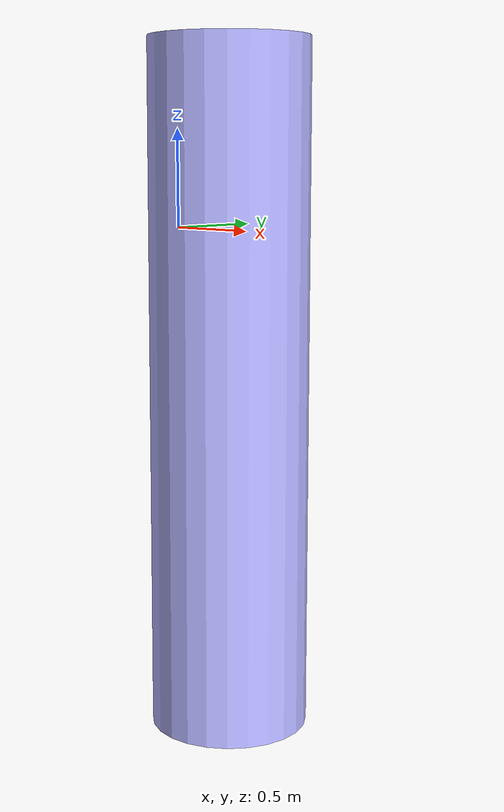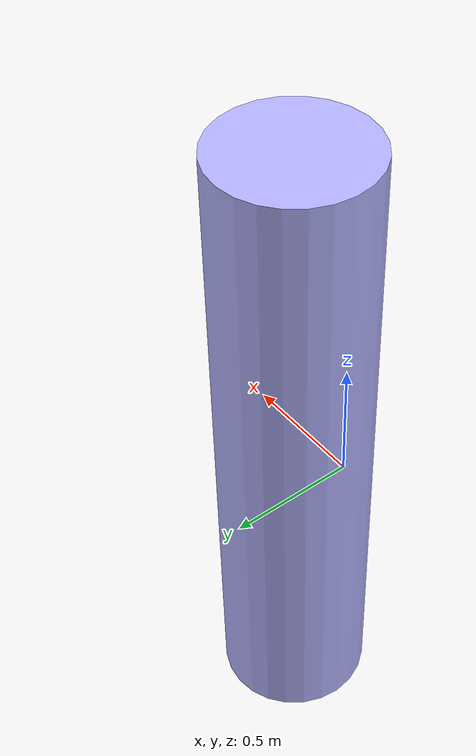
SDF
<?xml version='1.0'?>
<sdf version='1.6'>
  <model name='unit_cylinder_blue'>
    <link name='link_1'>
      <pose frame=''>0.746146 -0.350774 -0.71216 0 0 -0.000199</pose>
      <inertial>
        <mass>1.76162</mass>
        <inertia>
          <ixx>1.57891</ixx>
          <ixy>0</ixy>
          <ixz>0</ixz>
          <iyy>1.57891</iyy>
          <iyz>0</iyz>
          <izz>0.120606</izz>
        </inertia>
        <pose frame=''>0 0 0 0 -0 0</pose>
      </inertial>
      <gravity>1</gravity>
      <self_collide>0</self_collide>
      <kinematic>0</kinematic>
      <visual name='visual'>
        <pose frame=''>0 0 0 0 -0 0</pose>
        <geometry>
          <cylinder>
            <radius>0.370036</radius>
            <length>3.2163</length>
          </cylinder>
        </geometry>
        <material>
          <lighting>1</lighting>
          <script>
            <uri>file://media/materials/scripts/gazebo.material</uri>
            <name>Gazebo/Grey</name>
          </script>
          <ambient>0.3 0.3 1 1</ambient>
          <diffuse>0.7 0.7 1 1</diffuse>
          <specular>0 0 1 1</specular>
          <emissive>0 0 1 1</emissive>
          <shader type='vertex'>
            <normal_map>__default__</normal_map>
          </shader>
        </material>
        <transparency>0</transparency>
        <cast_shadows>1</cast_shadows>
      </visual>
      <collision name='collision'>
        <laser_retro>0</laser_retro>
        <max_contacts>10</max_contacts>
        <pose frame=''>0 0 0 0 -0 0</pose>
        <geometry>
          <cylinder>
            <radius>0.370036</radius>
            <length>3.21631</length>
          </cylinder>
        </geometry>
        <surface>
          <friction>
            <ode>
              <mu>1</mu>
              <mu2>1</mu2>
              <fdir1>0 0 0</fdir1>
              <slip1>0</slip1>
              <slip2>0</slip2>
            </ode>
            <torsional>
              <coefficient>1</coefficient>
              <patch_radius>0</patch_radius>
              <surface_radius>0</surface_radius>
              <use_patch_radius>1</use_patch_radius>
              <ode>
                <slip>0</slip>
              </ode>
            </torsional>
          </friction>
          <bounce>
            <restitution_coefficient>0</restitution_coefficient>
            <threshold>1e+06</threshold>
          </bounce>
          <contact>
            <collide_without_contact>0</collide_without_contact>
            <collide_without_contact_bitmask>1</collide_without_contact_bitmask>
            <collide_bitmask>1</collide_bitmask>
            <ode>
              <soft_cfm>0</soft_cfm>
              <soft_erp>0.2</soft_erp>
              <kp>1e+13</kp>
              <kd>1</kd>
              <max_vel>0.01</max_vel>
              <min_depth>0</min_depth>
            </ode>
            <bullet>
              <split_impulse>1</split_impulse>
              <split_impulse_penetration_threshold>-0.01</split_impulse_penetration_threshold>
              <soft_cfm>0</soft_cfm>
              <soft_erp>0.2</soft_erp>
              <kp>1e+13</kp>
              <kd>1</kd>
            </bullet>
          </contact>
        </surface>
      </collision>
    </link>
    <static>0</static>
    <allow_auto_disable>1</allow_auto_disable>
  </model>
</sdf>
